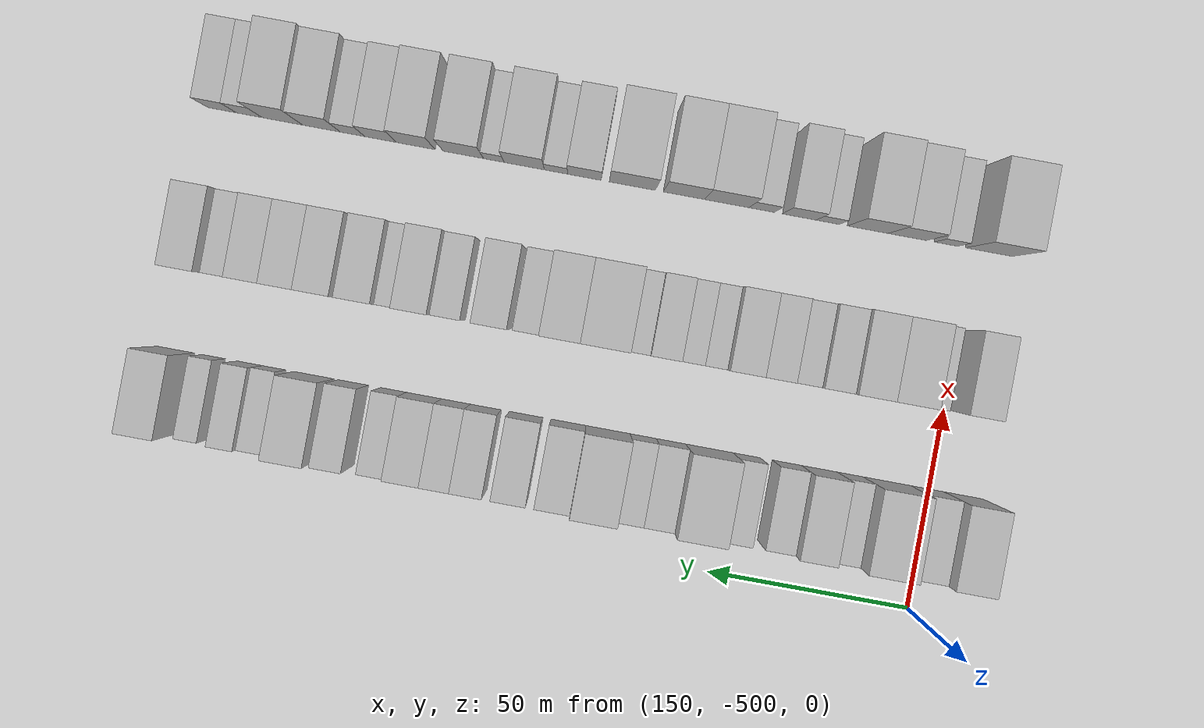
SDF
<sdf version="1.6">
 <world name="default">
  <model name="building_434">
   <static>1</static>
   <pose>170.0000 -508.4114 0 0.000000 0.000000 0.000000</pose>
   <link name="link">
    <pose>0 0 12.00 0 0 0</pose>
    <collision name="collision"><geometry><box><size>20.0000 9.8614 24.0000</size></box></geometry></collision>
    <visual name="visual">
     <cast_shadows>0</cast_shadows>
     <geometry><box><size>20.0000 9.8614 24.0000</size></box></geometry>
     <material>
      <script>
       <uri>model://HANNAS_wall/materials/scripts</uri>
       <uri>model://HANNAS_wall/materials/textures</uri>
       <name>vrc/HANNAS_wall</name>
      </script>
     </material>
    </visual>
   </link>
  </model>
  <model name="building_435">
   <static>1</static>
   <pose>170.0000 -499.3486 0 0.000000 0.000000 0.000000</pose>
   <link name="link">
    <pose>0 0 9.00 0 0 0</pose>
    <collision name="collision"><geometry><box><size>20.0000 8.2641 18.0000</size></box></geometry></collision>
    <visual name="visual">
     <cast_shadows>0</cast_shadows>
     <geometry><box><size>20.0000 8.2641 18.0000</size></box></geometry>
     <material>
      <script>
       <uri>model://HANNAS_wall/materials/scripts</uri>
       <uri>model://HANNAS_wall/materials/textures</uri>
       <name>vrc/HANNAS_wall</name>
      </script>
     </material>
    </visual>
   </link>
  </model>
  <model name="building_436">
   <static>1</static>
   <pose>170.0000 -489.2541 0 0.000000 0.000000 0.000000</pose>
   <link name="link">
    <pose>0 0 12.00 0 0 0</pose>
    <collision name="collision"><geometry><box><size>20.0000 11.9250 24.0000</size></box></geometry></collision>
    <visual name="visual">
     <cast_shadows>0</cast_shadows>
     <geometry><box><size>20.0000 11.9250 24.0000</size></box></geometry>
     <material>
      <script>
       <uri>model://HANNAS_wall/materials/scripts</uri>
       <uri>model://HANNAS_wall/materials/textures</uri>
       <name>vrc/HANNAS_wall</name>
      </script>
     </material>
    </visual>
   </link>
  </model>
  <model name="building_437">
   <static>1</static>
   <pose>170.0000 -480.0767 0 0.000000 0.000000 0.000000</pose>
   <link name="link">
    <pose>0 0 7.50 0 0 0</pose>
    <collision name="collision"><geometry><box><size>20.0000 6.4298 15.0000</size></box></geometry></collision>
    <visual name="visual">
     <cast_shadows>0</cast_shadows>
     <geometry><box><size>20.0000 6.4298 15.0000</size></box></geometry>
     <material>
      <script>
       <uri>model://HANNAS_wall/materials/scripts</uri>
       <uri>model://HANNAS_wall/materials/textures</uri>
       <name>vrc/HANNAS_wall</name>
      </script>
     </material>
    </visual>
   </link>
  </model>
  <model name="building_438">
   <static>1</static>
   <pose>170.0000 -472.3614 0 0.000000 0.000000 0.000000</pose>
   <link name="link">
    <pose>0 0 10.50 0 0 0</pose>
    <collision name="collision"><geometry><box><size>20.0000 9.0008 21.0000</size></box></geometry></collision>
    <visual name="visual">
     <cast_shadows>0</cast_shadows>
     <geometry><box><size>20.0000 9.0008 21.0000</size></box></geometry>
     <material>
      <script>
       <uri>model://HANNAS_wall/materials/scripts</uri>
       <uri>model://HANNAS_wall/materials/textures</uri>
       <name>vrc/HANNAS_wall</name>
      </script>
     </material>
    </visual>
   </link>
  </model>
  <model name="building_439">
   <static>1</static>
   <pose>170.0000 -464.2352 0 0.000000 0.000000 0.000000</pose>
   <link name="link">
    <pose>0 0 7.50 0 0 0</pose>
    <collision name="collision"><geometry><box><size>20.0000 7.2515 15.0000</size></box></geometry></collision>
    <visual name="visual">
     <cast_shadows>0</cast_shadows>
     <geometry><box><size>20.0000 7.2515 15.0000</size></box></geometry>
     <material>
      <script>
       <uri>model://HANNAS_wall/materials/scripts</uri>
       <uri>model://HANNAS_wall/materials/textures</uri>
       <name>vrc/HANNAS_wall</name>
      </script>
     </material>
    </visual>
   </link>
  </model>
  <model name="building_440">
   <static>1</static>
   <pose>170.0000 -454.2240 0 0.000000 0.000000 0.000000</pose>
   <link name="link">
    <pose>0 0 7.50 0 0 0</pose>
    <collision name="collision"><geometry><box><size>20.0000 6.7709 15.0000</size></box></geometry></collision>
    <visual name="visual">
     <cast_shadows>0</cast_shadows>
     <geometry><box><size>20.0000 6.7709 15.0000</size></box></geometry>
     <material>
      <script>
       <uri>model://HANNAS_wall/materials/scripts</uri>
       <uri>model://HANNAS_wall/materials/textures</uri>
       <name>vrc/HANNAS_wall</name>
      </script>
     </material>
    </visual>
   </link>
  </model>
  <model name="building_441">
   <static>1</static>
   <pose>170.0000 -444.8789 0 0.000000 0.000000 0.000000</pose>
   <link name="link">
    <pose>0 0 12.00 0 0 0</pose>
    <collision name="collision"><geometry><box><size>20.0000 11.9193 24.0000</size></box></geometry></collision>
    <visual name="visual">
     <cast_shadows>0</cast_shadows>
     <geometry><box><size>20.0000 11.9193 24.0000</size></box></geometry>
     <material>
      <script>
       <uri>model://HANNAS_wall/materials/scripts</uri>
       <uri>model://HANNAS_wall/materials/textures</uri>
       <name>vrc/HANNAS_wall</name>
      </script>
     </material>
    </visual>
   </link>
  </model>
  <model name="building_442">
   <static>1</static>
   <pose>170.0000 -435.2366 0 0.000000 0.000000 0.000000</pose>
   <link name="link">
    <pose>0 0 7.50 0 0 0</pose>
    <collision name="collision"><geometry><box><size>20.0000 7.3653 15.0000</size></box></geometry></collision>
    <visual name="visual">
     <cast_shadows>0</cast_shadows>
     <geometry><box><size>20.0000 7.3653 15.0000</size></box></geometry>
     <material>
      <script>
       <uri>model://HANNAS_wall/materials/scripts</uri>
       <uri>model://HANNAS_wall/materials/textures</uri>
       <name>vrc/HANNAS_wall</name>
      </script>
     </material>
    </visual>
   </link>
  </model>
  <model name="building_443">
   <static>1</static>
   <pose>170.0000 -428.2948 0 0.000000 0.000000 0.000000</pose>
   <link name="link">
    <pose>0 0 7.50 0 0 0</pose>
    <collision name="collision"><geometry><box><size>20.0000 6.5183 15.0000</size></box></geometry></collision>
    <visual name="visual">
     <cast_shadows>0</cast_shadows>
     <geometry><box><size>20.0000 6.5183 15.0000</size></box></geometry>
     <material>
      <script>
       <uri>model://HANNAS_wall/materials/scripts</uri>
       <uri>model://HANNAS_wall/materials/textures</uri>
       <name>vrc/HANNAS_wall</name>
      </script>
     </material>
    </visual>
   </link>
  </model>
  <model name="building_444">
   <static>1</static>
   <pose>170.0000 -419.4394 0 0.000000 0.000000 0.000000</pose>
   <link name="link">
    <pose>0 0 12.00 0 0 0</pose>
    <collision name="collision"><geometry><box><size>20.0000 11.1926 24.0000</size></box></geometry></collision>
    <visual name="visual">
     <cast_shadows>0</cast_shadows>
     <geometry><box><size>20.0000 11.1926 24.0000</size></box></geometry>
     <material>
      <script>
       <uri>model://HANNAS_wall/materials/scripts</uri>
       <uri>model://HANNAS_wall/materials/textures</uri>
       <name>vrc/HANNAS_wall</name>
      </script>
     </material>
    </visual>
   </link>
  </model>
  <model name="building_445">
   <static>1</static>
   <pose>170.0000 -409.5842 0 0.000000 0.000000 0.000000</pose>
   <link name="link">
    <pose>0 0 9.00 0 0 0</pose>
    <collision name="collision"><geometry><box><size>20.0000 8.5177 18.0000</size></box></geometry></collision>
    <visual name="visual">
     <cast_shadows>0</cast_shadows>
     <geometry><box><size>20.0000 8.5177 18.0000</size></box></geometry>
     <material>
      <script>
       <uri>model://HANNAS_wall/materials/scripts</uri>
       <uri>model://HANNAS_wall/materials/textures</uri>
       <name>vrc/HANNAS_wall</name>
      </script>
     </material>
    </visual>
   </link>
  </model>
  <model name="building_446">
   <static>1</static>
   <pose>170.0000 -399.1330 0 0.000000 0.000000 0.000000</pose>
   <link name="link">
    <pose>0 0 9.00 0 0 0</pose>
    <collision name="collision"><geometry><box><size>20.0000 8.3846 18.0000</size></box></geometry></collision>
    <visual name="visual">
     <cast_shadows>0</cast_shadows>
     <geometry><box><size>20.0000 8.3846 18.0000</size></box></geometry>
     <material>
      <script>
       <uri>model://HANNAS_wall/materials/scripts</uri>
       <uri>model://HANNAS_wall/materials/textures</uri>
       <name>vrc/HANNAS_wall</name>
      </script>
     </material>
    </visual>
   </link>
  </model>
  <model name="building_447">
   <static>1</static>
   <pose>170.0000 -389.0666 0 0.000000 0.000000 0.000000</pose>
   <link name="link">
    <pose>0 0 9.00 0 0 0</pose>
    <collision name="collision"><geometry><box><size>20.0000 7.7482 18.0000</size></box></geometry></collision>
    <visual name="visual">
     <cast_shadows>0</cast_shadows>
     <geometry><box><size>20.0000 7.7482 18.0000</size></box></geometry>
     <material>
      <script>
       <uri>model://HANNAS_wall/materials/scripts</uri>
       <uri>model://HANNAS_wall/materials/textures</uri>
       <name>vrc/HANNAS_wall</name>
      </script>
     </material>
    </visual>
   </link>
  </model>
  <model name="building_448">
   <static>1</static>
   <pose>170.0000 -381.5885 0 0.000000 0.000000 0.000000</pose>
   <link name="link">
    <pose>0 0 9.00 0 0 0</pose>
    <collision name="collision"><geometry><box><size>20.0000 7.2082 18.0000</size></box></geometry></collision>
    <visual name="visual">
     <cast_shadows>0</cast_shadows>
     <geometry><box><size>20.0000 7.2082 18.0000</size></box></geometry>
     <material>
      <script>
       <uri>model://HANNAS_wall/materials/scripts</uri>
       <uri>model://HANNAS_wall/materials/textures</uri>
       <name>vrc/HANNAS_wall</name>
      </script>
     </material>
    </visual>
   </link>
  </model>
  <model name="building_449">
   <static>1</static>
   <pose>170.0000 -373.6012 0 0.000000 0.000000 0.000000</pose>
   <link name="link">
    <pose>0 0 9.00 0 0 0</pose>
    <collision name="collision"><geometry><box><size>20.0000 8.7664 18.0000</size></box></geometry></collision>
    <visual name="visual">
     <cast_shadows>0</cast_shadows>
     <geometry><box><size>20.0000 8.7664 18.0000</size></box></geometry>
     <material>
      <script>
       <uri>model://HANNAS_wall/materials/scripts</uri>
       <uri>model://HANNAS_wall/materials/textures</uri>
       <name>vrc/HANNAS_wall</name>
      </script>
     </material>
    </visual>
   </link>
  </model>
  <model name="building_450">
   <static>1</static>
   <pose>170.0000 -365.9431 0 0.000000 0.000000 0.000000</pose>
   <link name="link">
    <pose>0 0 7.50 0 0 0</pose>
    <collision name="collision"><geometry><box><size>20.0000 6.5497 15.0000</size></box></geometry></collision>
    <visual name="visual">
     <cast_shadows>0</cast_shadows>
     <geometry><box><size>20.0000 6.5497 15.0000</size></box></geometry>
     <material>
      <script>
       <uri>model://HANNAS_wall/materials/scripts</uri>
       <uri>model://HANNAS_wall/materials/textures</uri>
       <name>vrc/HANNAS_wall</name>
      </script>
     </material>
    </visual>
   </link>
  </model>
  <model name="building_451">
   <static>1</static>
   <pose>170.0000 -355.8602 0 0.000000 0.000000 0.000000</pose>
   <link name="link">
    <pose>0 0 9.00 0 0 0</pose>
    <collision name="collision"><geometry><box><size>20.0000 7.6161 18.0000</size></box></geometry></collision>
    <visual name="visual">
     <cast_shadows>0</cast_shadows>
     <geometry><box><size>20.0000 7.6161 18.0000</size></box></geometry>
     <material>
      <script>
       <uri>model://HANNAS_wall/materials/scripts</uri>
       <uri>model://HANNAS_wall/materials/textures</uri>
       <name>vrc/HANNAS_wall</name>
      </script>
     </material>
    </visual>
   </link>
  </model>
  <model name="building_452">
   <static>1</static>
   <pose>170.0000 -346.0365 0 0.000000 0.000000 0.000000</pose>
   <link name="link">
    <pose>0 0 10.50 0 0 0</pose>
    <collision name="collision"><geometry><box><size>20.0000 10.0312 21.0000</size></box></geometry></collision>
    <visual name="visual">
     <cast_shadows>0</cast_shadows>
     <geometry><box><size>20.0000 10.0312 21.0000</size></box></geometry>
     <material>
      <script>
       <uri>model://HANNAS_wall/materials/scripts</uri>
       <uri>model://HANNAS_wall/materials/textures</uri>
       <name>vrc/HANNAS_wall</name>
      </script>
     </material>
    </visual>
   </link>
  </model>
  <model name="building_453">
   <static>1</static>
   <pose>170.0000 -336.0901 0 0.000000 0.000000 0.000000</pose>
   <link name="link">
    <pose>0 0 6.00 0 0 0</pose>
    <collision name="collision"><geometry><box><size>20.0000 5.8617 12.0000</size></box></geometry></collision>
    <visual name="visual">
     <cast_shadows>0</cast_shadows>
     <geometry><box><size>20.0000 5.8617 12.0000</size></box></geometry>
     <material>
      <script>
       <uri>model://HANNAS_wall/materials/scripts</uri>
       <uri>model://HANNAS_wall/materials/textures</uri>
       <name>vrc/HANNAS_wall</name>
      </script>
     </material>
    </visual>
   </link>
  </model>
  <model name="building_454">
   <static>1</static>
   <pose>170.0000 -329.9813 0 0.000000 0.000000 0.000000</pose>
   <link name="link">
    <pose>0 0 7.50 0 0 0</pose>
    <collision name="collision"><geometry><box><size>20.0000 6.3561 15.0000</size></box></geometry></collision>
    <visual name="visual">
     <cast_shadows>0</cast_shadows>
     <geometry><box><size>20.0000 6.3561 15.0000</size></box></geometry>
     <material>
      <script>
       <uri>model://HANNAS_wall/materials/scripts</uri>
       <uri>model://HANNAS_wall/materials/textures</uri>
       <name>vrc/HANNAS_wall</name>
      </script>
     </material>
    </visual>
   </link>
  </model>
  <model name="building_455">
   <static>1</static>
   <pose>170.0000 -320.9538 0 0.000000 0.000000 0.000000</pose>
   <link name="link">
    <pose>0 0 6.00 0 0 0</pose>
    <collision name="collision"><geometry><box><size>20.0000 5.6988 12.0000</size></box></geometry></collision>
    <visual name="visual">
     <cast_shadows>0</cast_shadows>
     <geometry><box><size>20.0000 5.6988 12.0000</size></box></geometry>
     <material>
      <script>
       <uri>model://HANNAS_wall/materials/scripts</uri>
       <uri>model://HANNAS_wall/materials/textures</uri>
       <name>vrc/HANNAS_wall</name>
      </script>
     </material>
    </visual>
   </link>
  </model>
  <model name="building_456">
   <static>1</static>
   <pose>170.0000 -311.4314 0 0.000000 0.000000 0.000000</pose>
   <link name="link">
    <pose>0 0 10.50 0 0 0</pose>
    <collision name="collision"><geometry><box><size>20.0000 9.3460 21.0000</size></box></geometry></collision>
    <visual name="visual">
     <cast_shadows>0</cast_shadows>
     <geometry><box><size>20.0000 9.3460 21.0000</size></box></geometry>
     <material>
      <script>
       <uri>model://HANNAS_wall/materials/scripts</uri>
       <uri>model://HANNAS_wall/materials/textures</uri>
       <name>vrc/HANNAS_wall</name>
      </script>
     </material>
    </visual>
   </link>
  </model>
  <model name="building_583">
   <static>1</static>
   <pose>210.0000 -505.3045 0 0.000000 0.000000 0.000000</pose>
   <link name="link">
    <pose>0 0 9.00 0 0 0</pose>
    <collision name="collision"><geometry><box><size>20.0000 8.3420 18.0000</size></box></geometry></collision>
    <visual name="visual">
     <cast_shadows>0</cast_shadows>
     <geometry><box><size>20.0000 8.3420 18.0000</size></box></geometry>
     <material>
      <script>
       <uri>model://HANNAS_wall/materials/scripts</uri>
       <uri>model://HANNAS_wall/materials/textures</uri>
       <name>vrc/HANNAS_wall</name>
      </script>
     </material>
    </visual>
   </link>
  </model>
  <model name="building_584">
   <static>1</static>
   <pose>210.0000 -495.7300 0 0.000000 0.000000 0.000000</pose>
   <link name="link">
    <pose>0 0 6.00 0 0 0</pose>
    <collision name="collision"><geometry><box><size>20.0000 4.8069 12.0000</size></box></geometry></collision>
    <visual name="visual">
     <cast_shadows>0</cast_shadows>
     <geometry><box><size>20.0000 4.8069 12.0000</size></box></geometry>
     <material>
      <script>
       <uri>model://HANNAS_wall/materials/scripts</uri>
       <uri>model://HANNAS_wall/materials/textures</uri>
       <name>vrc/HANNAS_wall</name>
      </script>
     </material>
    </visual>
   </link>
  </model>
  <model name="building_585">
   <static>1</static>
   <pose>210.0000 -488.2340 0 0.000000 0.000000 0.000000</pose>
   <link name="link">
    <pose>0 0 10.50 0 0 0</pose>
    <collision name="collision"><geometry><box><size>20.0000 10.1850 21.0000</size></box></geometry></collision>
    <visual name="visual">
     <cast_shadows>0</cast_shadows>
     <geometry><box><size>20.0000 10.1850 21.0000</size></box></geometry>
     <material>
      <script>
       <uri>model://HANNAS_wall/materials/scripts</uri>
       <uri>model://HANNAS_wall/materials/textures</uri>
       <name>vrc/HANNAS_wall</name>
      </script>
     </material>
    </visual>
   </link>
  </model>
  <model name="building_586">
   <static>1</static>
   <pose>210.0000 -478.6548 0 0.000000 0.000000 0.000000</pose>
   <link name="link">
    <pose>0 0 10.50 0 0 0</pose>
    <collision name="collision"><geometry><box><size>20.0000 8.9735 21.0000</size></box></geometry></collision>
    <visual name="visual">
     <cast_shadows>0</cast_shadows>
     <geometry><box><size>20.0000 8.9735 21.0000</size></box></geometry>
     <material>
      <script>
       <uri>model://HANNAS_wall/materials/scripts</uri>
       <uri>model://HANNAS_wall/materials/textures</uri>
       <name>vrc/HANNAS_wall</name>
      </script>
     </material>
    </visual>
   </link>
  </model>
  <model name="building_587">
   <static>1</static>
   <pose>210.0000 -470.4837 0 0.000000 0.000000 0.000000</pose>
   <link name="link">
    <pose>0 0 9.00 0 0 0</pose>
    <collision name="collision"><geometry><box><size>20.0000 7.3687 18.0000</size></box></geometry></collision>
    <visual name="visual">
     <cast_shadows>0</cast_shadows>
     <geometry><box><size>20.0000 7.3687 18.0000</size></box></geometry>
     <material>
      <script>
       <uri>model://HANNAS_wall/materials/scripts</uri>
       <uri>model://HANNAS_wall/materials/textures</uri>
       <name>vrc/HANNAS_wall</name>
      </script>
     </material>
    </visual>
   </link>
  </model>
  <model name="building_588">
   <static>1</static>
   <pose>210.0000 -463.5233 0 0.000000 0.000000 0.000000</pose>
   <link name="link">
    <pose>0 0 7.50 0 0 0</pose>
    <collision name="collision"><geometry><box><size>20.0000 6.5522 15.0000</size></box></geometry></collision>
    <visual name="visual">
     <cast_shadows>0</cast_shadows>
     <geometry><box><size>20.0000 6.5522 15.0000</size></box></geometry>
     <material>
      <script>
       <uri>model://HANNAS_wall/materials/scripts</uri>
       <uri>model://HANNAS_wall/materials/textures</uri>
       <name>vrc/HANNAS_wall</name>
      </script>
     </material>
    </visual>
   </link>
  </model>
  <model name="building_589">
   <static>1</static>
   <pose>210.0000 -456.5657 0 0.000000 0.000000 0.000000</pose>
   <link name="link">
    <pose>0 0 9.00 0 0 0</pose>
    <collision name="collision"><geometry><box><size>20.0000 7.3629 18.0000</size></box></geometry></collision>
    <visual name="visual">
     <cast_shadows>0</cast_shadows>
     <geometry><box><size>20.0000 7.3629 18.0000</size></box></geometry>
     <material>
      <script>
       <uri>model://HANNAS_wall/materials/scripts</uri>
       <uri>model://HANNAS_wall/materials/textures</uri>
       <name>vrc/HANNAS_wall</name>
      </script>
     </material>
    </visual>
   </link>
  </model>
  <model name="building_590">
   <static>1</static>
   <pose>210.0000 -448.6803 0 0.000000 0.000000 0.000000</pose>
   <link name="link">
    <pose>0 0 9.00 0 0 0</pose>
    <collision name="collision"><geometry><box><size>20.0000 8.4078 18.0000</size></box></geometry></collision>
    <visual name="visual">
     <cast_shadows>0</cast_shadows>
     <geometry><box><size>20.0000 8.4078 18.0000</size></box></geometry>
     <material>
      <script>
       <uri>model://HANNAS_wall/materials/scripts</uri>
       <uri>model://HANNAS_wall/materials/textures</uri>
       <name>vrc/HANNAS_wall</name>
      </script>
     </material>
    </visual>
   </link>
  </model>
  <model name="building_591">
   <static>1</static>
   <pose>210.0000 -441.7897 0 0.000000 0.000000 0.000000</pose>
   <link name="link">
    <pose>0 0 6.00 0 0 0</pose>
    <collision name="collision"><geometry><box><size>20.0000 5.3733 12.0000</size></box></geometry></collision>
    <visual name="visual">
     <cast_shadows>0</cast_shadows>
     <geometry><box><size>20.0000 5.3733 12.0000</size></box></geometry>
     <material>
      <script>
       <uri>model://HANNAS_wall/materials/scripts</uri>
       <uri>model://HANNAS_wall/materials/textures</uri>
       <name>vrc/HANNAS_wall</name>
      </script>
     </material>
    </visual>
   </link>
  </model>
  <model name="building_592">
   <static>1</static>
   <pose>210.0000 -436.2322 0 0.000000 0.000000 0.000000</pose>
   <link name="link">
    <pose>0 0 6.00 0 0 0</pose>
    <collision name="collision"><geometry><box><size>20.0000 5.7417 12.0000</size></box></geometry></collision>
    <visual name="visual">
     <cast_shadows>0</cast_shadows>
     <geometry><box><size>20.0000 5.7417 12.0000</size></box></geometry>
     <material>
      <script>
       <uri>model://HANNAS_wall/materials/scripts</uri>
       <uri>model://HANNAS_wall/materials/textures</uri>
       <name>vrc/HANNAS_wall</name>
      </script>
     </material>
    </visual>
   </link>
  </model>
  <model name="building_593">
   <static>1</static>
   <pose>210.0000 -429.6223 0 0.000000 0.000000 0.000000</pose>
   <link name="link">
    <pose>0 0 7.50 0 0 0</pose>
    <collision name="collision"><geometry><box><size>20.0000 7.4782 15.0000</size></box></geometry></collision>
    <visual name="visual">
     <cast_shadows>0</cast_shadows>
     <geometry><box><size>20.0000 7.4782 15.0000</size></box></geometry>
     <material>
      <script>
       <uri>model://HANNAS_wall/materials/scripts</uri>
       <uri>model://HANNAS_wall/materials/textures</uri>
       <name>vrc/HANNAS_wall</name>
      </script>
     </material>
    </visual>
   </link>
  </model>
  <model name="building_594">
   <static>1</static>
   <pose>210.0000 -423.3250 0 0.000000 0.000000 0.000000</pose>
   <link name="link">
    <pose>0 0 6.00 0 0 0</pose>
    <collision name="collision"><geometry><box><size>20.0000 5.1163 12.0000</size></box></geometry></collision>
    <visual name="visual">
     <cast_shadows>0</cast_shadows>
     <geometry><box><size>20.0000 5.1163 12.0000</size></box></geometry>
     <material>
      <script>
       <uri>model://HANNAS_wall/materials/scripts</uri>
       <uri>model://HANNAS_wall/materials/textures</uri>
       <name>vrc/HANNAS_wall</name>
      </script>
     </material>
    </visual>
   </link>
  </model>
  <model name="building_595">
   <static>1</static>
   <pose>210.0000 -414.8553 0 0.000000 0.000000 0.000000</pose>
   <link name="link">
    <pose>0 0 12.00 0 0 0</pose>
    <collision name="collision"><geometry><box><size>20.0000 11.8231 24.0000</size></box></geometry></collision>
    <visual name="visual">
     <cast_shadows>0</cast_shadows>
     <geometry><box><size>20.0000 11.8231 24.0000</size></box></geometry>
     <material>
      <script>
       <uri>model://HANNAS_wall/materials/scripts</uri>
       <uri>model://HANNAS_wall/materials/textures</uri>
       <name>vrc/HANNAS_wall</name>
      </script>
     </material>
    </visual>
   </link>
  </model>
  <model name="building_596">
   <static>1</static>
   <pose>210.0000 -404.1008 0 0.000000 0.000000 0.000000</pose>
   <link name="link">
    <pose>0 0 12.00 0 0 0</pose>
    <collision name="collision"><geometry><box><size>20.0000 9.6859 24.0000</size></box></geometry></collision>
    <visual name="visual">
     <cast_shadows>0</cast_shadows>
     <geometry><box><size>20.0000 9.6859 24.0000</size></box></geometry>
     <material>
      <script>
       <uri>model://HANNAS_wall/materials/scripts</uri>
       <uri>model://HANNAS_wall/materials/textures</uri>
       <name>vrc/HANNAS_wall</name>
      </script>
     </material>
    </visual>
   </link>
  </model>
  <model name="building_597">
   <static>1</static>
   <pose>210.0000 -395.9625 0 0.000000 0.000000 0.000000</pose>
   <link name="link">
    <pose>0 0 7.50 0 0 0</pose>
    <collision name="collision"><geometry><box><size>20.0000 6.5909 15.0000</size></box></geometry></collision>
    <visual name="visual">
     <cast_shadows>0</cast_shadows>
     <geometry><box><size>20.0000 6.5909 15.0000</size></box></geometry>
     <material>
      <script>
       <uri>model://HANNAS_wall/materials/scripts</uri>
       <uri>model://HANNAS_wall/materials/textures</uri>
       <name>vrc/HANNAS_wall</name>
      </script>
     </material>
    </visual>
   </link>
  </model>
  <model name="building_598">
   <static>1</static>
   <pose>210.0000 -387.3945 0 0.000000 0.000000 0.000000</pose>
   <link name="link">
    <pose>0 0 10.50 0 0 0</pose>
    <collision name="collision"><geometry><box><size>20.0000 8.5451 21.0000</size></box></geometry></collision>
    <visual name="visual">
     <cast_shadows>0</cast_shadows>
     <geometry><box><size>20.0000 8.5451 21.0000</size></box></geometry>
     <material>
      <script>
       <uri>model://HANNAS_wall/materials/scripts</uri>
       <uri>model://HANNAS_wall/materials/textures</uri>
       <name>vrc/HANNAS_wall</name>
      </script>
     </material>
    </visual>
   </link>
  </model>
  <model name="building_599">
   <static>1</static>
   <pose>210.0000 -376.4922 0 0.000000 0.000000 0.000000</pose>
   <link name="link">
    <pose>0 0 7.50 0 0 0</pose>
    <collision name="collision"><geometry><box><size>20.0000 7.2595 15.0000</size></box></geometry></collision>
    <visual name="visual">
     <cast_shadows>0</cast_shadows>
     <geometry><box><size>20.0000 7.2595 15.0000</size></box></geometry>
     <material>
      <script>
       <uri>model://HANNAS_wall/materials/scripts</uri>
       <uri>model://HANNAS_wall/materials/textures</uri>
       <name>vrc/HANNAS_wall</name>
      </script>
     </material>
    </visual>
   </link>
  </model>
  <model name="building_600">
   <static>1</static>
   <pose>210.0000 -368.5956 0 0.000000 0.000000 0.000000</pose>
   <link name="link">
    <pose>0 0 10.50 0 0 0</pose>
    <collision name="collision"><geometry><box><size>20.0000 8.5336 21.0000</size></box></geometry></collision>
    <visual name="visual">
     <cast_shadows>0</cast_shadows>
     <geometry><box><size>20.0000 8.5336 21.0000</size></box></geometry>
     <material>
      <script>
       <uri>model://HANNAS_wall/materials/scripts</uri>
       <uri>model://HANNAS_wall/materials/textures</uri>
       <name>vrc/HANNAS_wall</name>
      </script>
     </material>
    </visual>
   </link>
  </model>
  <model name="building_601">
   <static>1</static>
   <pose>210.0000 -361.7159 0 0.000000 0.000000 0.000000</pose>
   <link name="link">
    <pose>0 0 6.00 0 0 0</pose>
    <collision name="collision"><geometry><box><size>20.0000 5.2257 12.0000</size></box></geometry></collision>
    <visual name="visual">
     <cast_shadows>0</cast_shadows>
     <geometry><box><size>20.0000 5.2257 12.0000</size></box></geometry>
     <material>
      <script>
       <uri>model://HANNAS_wall/materials/scripts</uri>
       <uri>model://HANNAS_wall/materials/textures</uri>
       <name>vrc/HANNAS_wall</name>
      </script>
     </material>
    </visual>
   </link>
  </model>
  <model name="building_602">
   <static>1</static>
   <pose>210.0000 -354.7278 0 0.000000 0.000000 0.000000</pose>
   <link name="link">
    <pose>0 0 9.00 0 0 0</pose>
    <collision name="collision"><geometry><box><size>20.0000 8.7503 18.0000</size></box></geometry></collision>
    <visual name="visual">
     <cast_shadows>0</cast_shadows>
     <geometry><box><size>20.0000 8.7503 18.0000</size></box></geometry>
     <material>
      <script>
       <uri>model://HANNAS_wall/materials/scripts</uri>
       <uri>model://HANNAS_wall/materials/textures</uri>
       <name>vrc/HANNAS_wall</name>
      </script>
     </material>
    </visual>
   </link>
  </model>
  <model name="building_603">
   <static>1</static>
   <pose>210.0000 -344.9896 0 0.000000 0.000000 0.000000</pose>
   <link name="link">
    <pose>0 0 9.00 0 0 0</pose>
    <collision name="collision"><geometry><box><size>20.0000 8.7262 18.0000</size></box></geometry></collision>
    <visual name="visual">
     <cast_shadows>0</cast_shadows>
     <geometry><box><size>20.0000 8.7262 18.0000</size></box></geometry>
     <material>
      <script>
       <uri>model://HANNAS_wall/materials/scripts</uri>
       <uri>model://HANNAS_wall/materials/textures</uri>
       <name>vrc/HANNAS_wall</name>
      </script>
     </material>
    </visual>
   </link>
  </model>
  <model name="building_604">
   <static>1</static>
   <pose>210.0000 -336.5364 0 0.000000 0.000000 0.000000</pose>
   <link name="link">
    <pose>0 0 9.00 0 0 0</pose>
    <collision name="collision"><geometry><box><size>20.0000 8.1801 18.0000</size></box></geometry></collision>
    <visual name="visual">
     <cast_shadows>0</cast_shadows>
     <geometry><box><size>20.0000 8.1801 18.0000</size></box></geometry>
     <material>
      <script>
       <uri>model://HANNAS_wall/materials/scripts</uri>
       <uri>model://HANNAS_wall/materials/textures</uri>
       <name>vrc/HANNAS_wall</name>
      </script>
     </material>
    </visual>
   </link>
  </model>
  <model name="building_605">
   <static>1</static>
   <pose>210.0000 -328.3962 0 0.000000 0.000000 0.000000</pose>
   <link name="link">
    <pose>0 0 9.00 0 0 0</pose>
    <collision name="collision"><geometry><box><size>20.0000 8.1002 18.0000</size></box></geometry></collision>
    <visual name="visual">
     <cast_shadows>0</cast_shadows>
     <geometry><box><size>20.0000 8.1002 18.0000</size></box></geometry>
     <material>
      <script>
       <uri>model://HANNAS_wall/materials/scripts</uri>
       <uri>model://HANNAS_wall/materials/textures</uri>
       <name>vrc/HANNAS_wall</name>
      </script>
     </material>
    </visual>
   </link>
  </model>
  <model name="building_606">
   <static>1</static>
   <pose>210.0000 -321.1913 0 0.000000 0.000000 0.000000</pose>
   <link name="link">
    <pose>0 0 7.50 0 0 0</pose>
    <collision name="collision"><geometry><box><size>20.0000 6.3096 15.0000</size></box></geometry></collision>
    <visual name="visual">
     <cast_shadows>0</cast_shadows>
     <geometry><box><size>20.0000 6.3096 15.0000</size></box></geometry>
     <material>
      <script>
       <uri>model://HANNAS_wall/materials/scripts</uri>
       <uri>model://HANNAS_wall/materials/textures</uri>
       <name>vrc/HANNAS_wall</name>
      </script>
     </material>
    </visual>
   </link>
  </model>
  <model name="building_607">
   <static>1</static>
   <pose>210.0000 -313.7111 0 0.000000 0.000000 0.000000</pose>
   <link name="link">
    <pose>0 0 10.50 0 0 0</pose>
    <collision name="collision"><geometry><box><size>20.0000 8.6507 21.0000</size></box></geometry></collision>
    <visual name="visual">
     <cast_shadows>0</cast_shadows>
     <geometry><box><size>20.0000 8.6507 21.0000</size></box></geometry>
     <material>
      <script>
       <uri>model://HANNAS_wall/materials/scripts</uri>
       <uri>model://HANNAS_wall/materials/textures</uri>
       <name>vrc/HANNAS_wall</name>
      </script>
     </material>
    </visual>
   </link>
  </model>
  <model name="building_727">
   <static>1</static>
   <pose>250.0000 -503.6980 0 0.000000 0.000000 0.000000</pose>
   <link name="link">
    <pose>0 0 12.00 0 0 0</pose>
    <collision name="collision"><geometry><box><size>20.0000 11.6970 24.0000</size></box></geometry></collision>
    <visual name="visual">
     <cast_shadows>0</cast_shadows>
     <geometry><box><size>20.0000 11.6970 24.0000</size></box></geometry>
     <material>
      <script>
       <uri>model://HANNAS_wall/materials/scripts</uri>
       <uri>model://HANNAS_wall/materials/textures</uri>
       <name>vrc/HANNAS_wall</name>
      </script>
     </material>
    </visual>
   </link>
  </model>
  <model name="building_728">
   <static>1</static>
   <pose>250.0000 -492.9537 0 0.000000 0.000000 0.000000</pose>
   <link name="link">
    <pose>0 0 6.00 0 0 0</pose>
    <collision name="collision"><geometry><box><size>20.0000 5.7915 12.0000</size></box></geometry></collision>
    <visual name="visual">
     <cast_shadows>0</cast_shadows>
     <geometry><box><size>20.0000 5.7915 12.0000</size></box></geometry>
     <material>
      <script>
       <uri>model://HANNAS_wall/materials/scripts</uri>
       <uri>model://HANNAS_wall/materials/textures</uri>
       <name>vrc/HANNAS_wall</name>
      </script>
     </material>
    </visual>
   </link>
  </model>
  <model name="building_729">
   <static>1</static>
   <pose>250.0000 -483.2572 0 0.000000 0.000000 0.000000</pose>
   <link name="link">
    <pose>0 0 10.50 0 0 0</pose>
    <collision name="collision"><geometry><box><size>20.0000 9.6016 21.0000</size></box></geometry></collision>
    <visual name="visual">
     <cast_shadows>0</cast_shadows>
     <geometry><box><size>20.0000 9.6016 21.0000</size></box></geometry>
     <material>
      <script>
       <uri>model://HANNAS_wall/materials/scripts</uri>
       <uri>model://HANNAS_wall/materials/textures</uri>
       <name>vrc/HANNAS_wall</name>
      </script>
     </material>
    </visual>
   </link>
  </model>
  <model name="building_730">
   <static>1</static>
   <pose>250.0000 -473.3786 0 0.000000 0.000000 0.000000</pose>
   <link name="link">
    <pose>0 0 12.00 0 0 0</pose>
    <collision name="collision"><geometry><box><size>20.0000 10.1556 24.0000</size></box></geometry></collision>
    <visual name="visual">
     <cast_shadows>0</cast_shadows>
     <geometry><box><size>20.0000 10.1556 24.0000</size></box></geometry>
     <material>
      <script>
       <uri>model://HANNAS_wall/materials/scripts</uri>
       <uri>model://HANNAS_wall/materials/textures</uri>
       <name>vrc/HANNAS_wall</name>
      </script>
     </material>
    </visual>
   </link>
  </model>
  <model name="building_731">
   <static>1</static>
   <pose>250.0000 -463.3902 0 0.000000 0.000000 0.000000</pose>
   <link name="link">
    <pose>0 0 6.00 0 0 0</pose>
    <collision name="collision"><geometry><box><size>20.0000 5.8211 12.0000</size></box></geometry></collision>
    <visual name="visual">
     <cast_shadows>0</cast_shadows>
     <geometry><box><size>20.0000 5.8211 12.0000</size></box></geometry>
     <material>
      <script>
       <uri>model://HANNAS_wall/materials/scripts</uri>
       <uri>model://HANNAS_wall/materials/textures</uri>
       <name>vrc/HANNAS_wall</name>
      </script>
     </material>
    </visual>
   </link>
  </model>
  <model name="building_732">
   <static>1</static>
   <pose>250.0000 -456.2793 0 0.000000 0.000000 0.000000</pose>
   <link name="link">
    <pose>0 0 9.00 0 0 0</pose>
    <collision name="collision"><geometry><box><size>20.0000 8.4008 18.0000</size></box></geometry></collision>
    <visual name="visual">
     <cast_shadows>0</cast_shadows>
     <geometry><box><size>20.0000 8.4008 18.0000</size></box></geometry>
     <material>
      <script>
       <uri>model://HANNAS_wall/materials/scripts</uri>
       <uri>model://HANNAS_wall/materials/textures</uri>
       <name>vrc/HANNAS_wall</name>
      </script>
     </material>
    </visual>
   </link>
  </model>
  <model name="building_733">
   <static>1</static>
   <pose>250.0000 -446.8844 0 0.000000 0.000000 0.000000</pose>
   <link name="link">
    <pose>0 0 7.50 0 0 0</pose>
    <collision name="collision"><geometry><box><size>20.0000 6.3889 15.0000</size></box></geometry></collision>
    <visual name="visual">
     <cast_shadows>0</cast_shadows>
     <geometry><box><size>20.0000 6.3889 15.0000</size></box></geometry>
     <material>
      <script>
       <uri>model://HANNAS_wall/materials/scripts</uri>
       <uri>model://HANNAS_wall/materials/textures</uri>
       <name>vrc/HANNAS_wall</name>
      </script>
     </material>
    </visual>
   </link>
  </model>
  <model name="building_734">
   <static>1</static>
   <pose>250.0000 -438.0802 0 0.000000 0.000000 0.000000</pose>
   <link name="link">
    <pose>0 0 12.00 0 0 0</pose>
    <collision name="collision"><geometry><box><size>20.0000 11.2196 24.0000</size></box></geometry></collision>
    <visual name="visual">
     <cast_shadows>0</cast_shadows>
     <geometry><box><size>20.0000 11.2196 24.0000</size></box></geometry>
     <material>
      <script>
       <uri>model://HANNAS_wall/materials/scripts</uri>
       <uri>model://HANNAS_wall/materials/textures</uri>
       <name>vrc/HANNAS_wall</name>
      </script>
     </material>
    </visual>
   </link>
  </model>
  <model name="building_735">
   <static>1</static>
   <pose>250.0000 -427.3632 0 0.000000 0.000000 0.000000</pose>
   <link name="link">
    <pose>0 0 12.00 0 0 0</pose>
    <collision name="collision"><geometry><box><size>20.0000 10.2142 24.0000</size></box></geometry></collision>
    <visual name="visual">
     <cast_shadows>0</cast_shadows>
     <geometry><box><size>20.0000 10.2142 24.0000</size></box></geometry>
     <material>
      <script>
       <uri>model://HANNAS_wall/materials/scripts</uri>
       <uri>model://HANNAS_wall/materials/textures</uri>
       <name>vrc/HANNAS_wall</name>
      </script>
     </material>
    </visual>
   </link>
  </model>
  <model name="building_736">
   <static>1</static>
   <pose>250.0000 -414.4911 0 0.000000 0.000000 0.000000</pose>
   <link name="link">
    <pose>0 0 12.00 0 0 0</pose>
    <collision name="collision"><geometry><box><size>20.0000 11.5300 24.0000</size></box></geometry></collision>
    <visual name="visual">
     <cast_shadows>0</cast_shadows>
     <geometry><box><size>20.0000 11.5300 24.0000</size></box></geometry>
     <material>
      <script>
       <uri>model://HANNAS_wall/materials/scripts</uri>
       <uri>model://HANNAS_wall/materials/textures</uri>
       <name>vrc/HANNAS_wall</name>
      </script>
     </material>
    </visual>
   </link>
  </model>
  <model name="building_737">
   <static>1</static>
   <pose>250.0000 -402.5376 0 0.000000 0.000000 0.000000</pose>
   <link name="link">
    <pose>0 0 9.00 0 0 0</pose>
    <collision name="collision"><geometry><box><size>20.0000 8.3770 18.0000</size></box></geometry></collision>
    <visual name="visual">
     <cast_shadows>0</cast_shadows>
     <geometry><box><size>20.0000 8.3770 18.0000</size></box></geometry>
     <material>
      <script>
       <uri>model://HANNAS_wall/materials/scripts</uri>
       <uri>model://HANNAS_wall/materials/textures</uri>
       <name>vrc/HANNAS_wall</name>
      </script>
     </material>
    </visual>
   </link>
  </model>
  <model name="building_738">
   <static>1</static>
   <pose>250.0000 -395.4537 0 0.000000 0.000000 0.000000</pose>
   <link name="link">
    <pose>0 0 6.00 0 0 0</pose>
    <collision name="collision"><geometry><box><size>20.0000 5.7910 12.0000</size></box></geometry></collision>
    <visual name="visual">
     <cast_shadows>0</cast_shadows>
     <geometry><box><size>20.0000 5.7910 12.0000</size></box></geometry>
     <material>
      <script>
       <uri>model://HANNAS_wall/materials/scripts</uri>
       <uri>model://HANNAS_wall/materials/textures</uri>
       <name>vrc/HANNAS_wall</name>
      </script>
     </material>
    </visual>
   </link>
  </model>
  <model name="building_739">
   <static>1</static>
   <pose>250.0000 -387.5428 0 0.000000 0.000000 0.000000</pose>
   <link name="link">
    <pose>0 0 10.50 0 0 0</pose>
    <collision name="collision"><geometry><box><size>20.0000 10.0307 21.0000</size></box></geometry></collision>
    <visual name="visual">
     <cast_shadows>0</cast_shadows>
     <geometry><box><size>20.0000 10.0307 21.0000</size></box></geometry>
     <material>
      <script>
       <uri>model://HANNAS_wall/materials/scripts</uri>
       <uri>model://HANNAS_wall/materials/textures</uri>
       <name>vrc/HANNAS_wall</name>
      </script>
     </material>
    </visual>
   </link>
  </model>
  <model name="building_740">
   <static>1</static>
   <pose>250.0000 -379.9165 0 0.000000 0.000000 0.000000</pose>
   <link name="link">
    <pose>0 0 6.00 0 0 0</pose>
    <collision name="collision"><geometry><box><size>20.0000 5.2219 12.0000</size></box></geometry></collision>
    <visual name="visual">
     <cast_shadows>0</cast_shadows>
     <geometry><box><size>20.0000 5.2219 12.0000</size></box></geometry>
     <material>
      <script>
       <uri>model://HANNAS_wall/materials/scripts</uri>
       <uri>model://HANNAS_wall/materials/textures</uri>
       <name>vrc/HANNAS_wall</name>
      </script>
     </material>
    </visual>
   </link>
  </model>
  <model name="building_741">
   <static>1</static>
   <pose>250.0000 -372.2548 0 0.000000 0.000000 0.000000</pose>
   <link name="link">
    <pose>0 0 10.50 0 0 0</pose>
    <collision name="collision"><geometry><box><size>20.0000 10.1015 21.0000</size></box></geometry></collision>
    <visual name="visual">
     <cast_shadows>0</cast_shadows>
     <geometry><box><size>20.0000 10.1015 21.0000</size></box></geometry>
     <material>
      <script>
       <uri>model://HANNAS_wall/materials/scripts</uri>
       <uri>model://HANNAS_wall/materials/textures</uri>
       <name>vrc/HANNAS_wall</name>
      </script>
     </material>
    </visual>
   </link>
  </model>
  <model name="building_742">
   <static>1</static>
   <pose>250.0000 -360.3989 0 0.000000 0.000000 0.000000</pose>
   <link name="link">
    <pose>0 0 10.50 0 0 0</pose>
    <collision name="collision"><geometry><box><size>20.0000 9.6104 21.0000</size></box></geometry></collision>
    <visual name="visual">
     <cast_shadows>0</cast_shadows>
     <geometry><box><size>20.0000 9.6104 21.0000</size></box></geometry>
     <material>
      <script>
       <uri>model://HANNAS_wall/materials/scripts</uri>
       <uri>model://HANNAS_wall/materials/textures</uri>
       <name>vrc/HANNAS_wall</name>
      </script>
     </material>
    </visual>
   </link>
  </model>
  <model name="building_743">
   <static>1</static>
   <pose>250.0000 -351.6160 0 0.000000 0.000000 0.000000</pose>
   <link name="link">
    <pose>0 0 9.00 0 0 0</pose>
    <collision name="collision"><geometry><box><size>20.0000 7.9553 18.0000</size></box></geometry></collision>
    <visual name="visual">
     <cast_shadows>0</cast_shadows>
     <geometry><box><size>20.0000 7.9553 18.0000</size></box></geometry>
     <material>
      <script>
       <uri>model://HANNAS_wall/materials/scripts</uri>
       <uri>model://HANNAS_wall/materials/textures</uri>
       <name>vrc/HANNAS_wall</name>
      </script>
     </material>
    </visual>
   </link>
  </model>
  <model name="building_744">
   <static>1</static>
   <pose>250.0000 -344.5561 0 0.000000 0.000000 0.000000</pose>
   <link name="link">
    <pose>0 0 7.50 0 0 0</pose>
    <collision name="collision"><geometry><box><size>20.0000 6.1646 15.0000</size></box></geometry></collision>
    <visual name="visual">
     <cast_shadows>0</cast_shadows>
     <geometry><box><size>20.0000 6.1646 15.0000</size></box></geometry>
     <material>
      <script>
       <uri>model://HANNAS_wall/materials/scripts</uri>
       <uri>model://HANNAS_wall/materials/textures</uri>
       <name>vrc/HANNAS_wall</name>
      </script>
     </material>
    </visual>
   </link>
  </model>
  <model name="building_745">
   <static>1</static>
   <pose>250.0000 -336.7673 0 0.000000 0.000000 0.000000</pose>
   <link name="link">
    <pose>0 0 10.50 0 0 0</pose>
    <collision name="collision"><geometry><box><size>20.0000 9.4130 21.0000</size></box></geometry></collision>
    <visual name="visual">
     <cast_shadows>0</cast_shadows>
     <geometry><box><size>20.0000 9.4130 21.0000</size></box></geometry>
     <material>
      <script>
       <uri>model://HANNAS_wall/materials/scripts</uri>
       <uri>model://HANNAS_wall/materials/textures</uri>
       <name>vrc/HANNAS_wall</name>
      </script>
     </material>
    </visual>
   </link>
  </model>
  <model name="building_746">
   <static>1</static>
   <pose>250.0000 -327.0092 0 0.000000 0.000000 0.000000</pose>
   <link name="link">
    <pose>0 0 12.00 0 0 0</pose>
    <collision name="collision"><geometry><box><size>20.0000 10.1033 24.0000</size></box></geometry></collision>
    <visual name="visual">
     <cast_shadows>0</cast_shadows>
     <geometry><box><size>20.0000 10.1033 24.0000</size></box></geometry>
     <material>
      <script>
       <uri>model://HANNAS_wall/materials/scripts</uri>
       <uri>model://HANNAS_wall/materials/textures</uri>
       <name>vrc/HANNAS_wall</name>
      </script>
     </material>
    </visual>
   </link>
  </model>
  <model name="building_747">
   <static>1</static>
   <pose>250.0000 -318.7501 0 0.000000 0.000000 0.000000</pose>
   <link name="link">
    <pose>0 0 7.50 0 0 0</pose>
    <collision name="collision"><geometry><box><size>20.0000 6.4147 15.0000</size></box></geometry></collision>
    <visual name="visual">
     <cast_shadows>0</cast_shadows>
     <geometry><box><size>20.0000 6.4147 15.0000</size></box></geometry>
     <material>
      <script>
       <uri>model://HANNAS_wall/materials/scripts</uri>
       <uri>model://HANNAS_wall/materials/textures</uri>
       <name>vrc/HANNAS_wall</name>
      </script>
     </material>
    </visual>
   </link>
  </model>
  <model name="building_748">
   <static>1</static>
   <pose>250.0000 -311.9779 0 0.000000 0.000000 0.000000</pose>
   <link name="link">
    <pose>0 0 7.50 0 0 0</pose>
    <collision name="collision"><geometry><box><size>20.0000 7.1298 15.0000</size></box></geometry></collision>
    <visual name="visual">
     <cast_shadows>0</cast_shadows>
     <geometry><box><size>20.0000 7.1298 15.0000</size></box></geometry>
     <material>
      <script>
       <uri>model://HANNAS_wall/materials/scripts</uri>
       <uri>model://HANNAS_wall/materials/textures</uri>
       <name>vrc/HANNAS_wall</name>
      </script>
     </material>
    </visual>
   </link>
  </model>
 </world>
</sdf>
